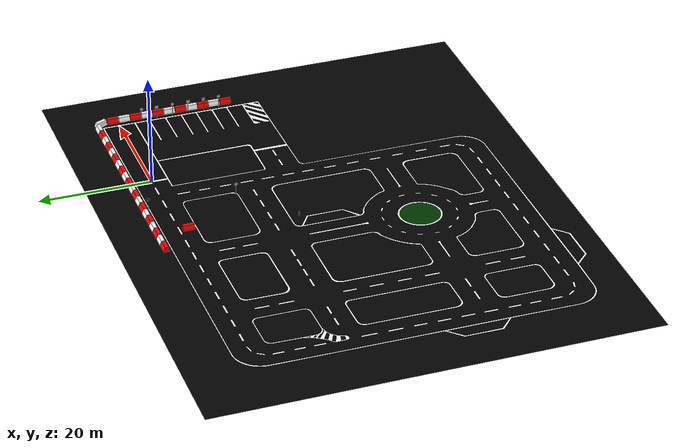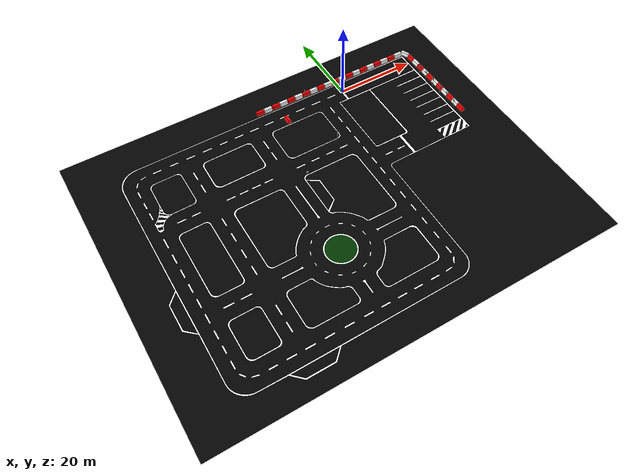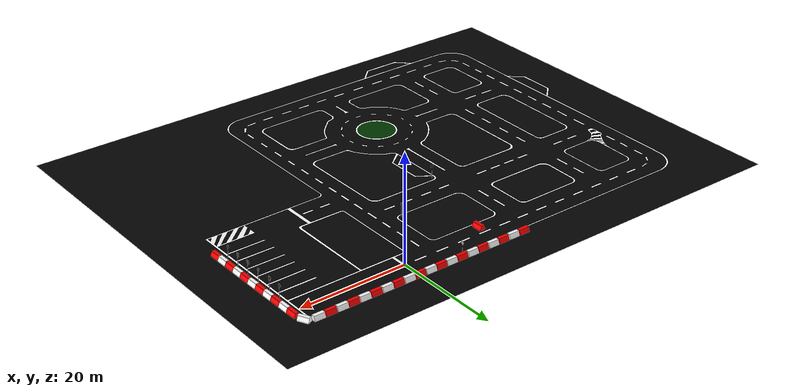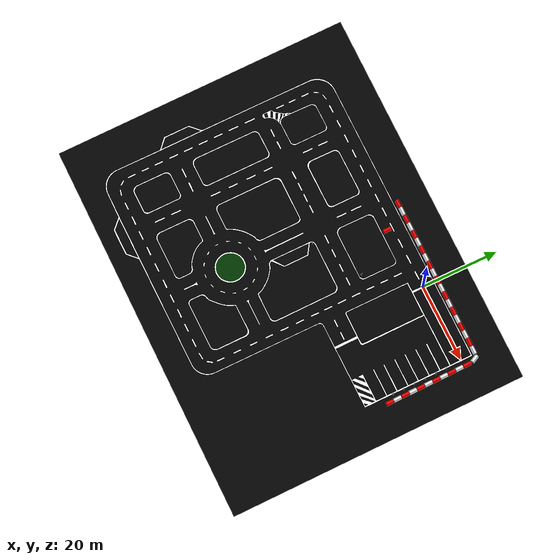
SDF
<sdf version="1.10">
 <world name="default">
  <model name="TeknofestHaritav2">
   <static>true</static>
   <link name="link">
    <collision name="collision">
     <geometry>
      <mesh><uri>package://simulation_2025/models/teknofest_zemin/meshes/teknofestharitav2.dae</uri></mesh>
     </geometry>
    </collision>
    <visual name="visual">
     <geometry>
      <mesh><uri>package://simulation_2025/models/teknofest_zemin/meshes/teknofestharitav2.dae</uri></mesh>
     </geometry>
    </visual>
    <inertial>
     <mass>1</mass>
     <inertia><ixx>1</ixx><ixy>0</ixy><ixz>0</ixz><iyy>1</iyy><iyz>0</iyz><izz>1</izz></inertia>
    </inertial>
   </link>
  </model>
  <include>
   <uri>package://simulation_2025/models/kirmizi_bariyer</uri>
   <name>KirmiziBariyer</name>
   <pose>0.10786999999999999 3.4992700000000001 0 0 0 -1.5717000000000001</pose>
  </include>
  <include>
   <uri>package://simulation_2025/models/beyaz_bariyer</uri>
   <name>BeyazBariyer</name>
   <pose>-2 3.5049600000000001 0 0 0 -1.5805400000000001</pose>
  </include>
  <include>
   <uri>package://simulation_2025/models/kirmizi_bariyer</uri>
   <name>KirmiziBariyer_1</name>
   <pose>-4.0795599999999999 3.5112199999999998 0 0 0 -1.5717000000000001</pose>
  </include>
  <include>
   <uri>package://simulation_2025/models/beyaz_bariyer</uri>
   <name>BeyazBariyer_1</name>
   <pose>-6.1809900000000004 3.5314399999999999 0 0 0 -1.5805400000000001</pose>
  </include>
  <include>
   <uri>package://simulation_2025/models/kirmizi_bariyer</uri>
   <name>KirmiziBariyer_1_1</name>
   <pose>-8.3466199999999997 3.5272800000000002 0 0 0 -1.5717000000000001</pose>
  </include>
  <include>
   <uri>package://simulation_2025/models/beyaz_bariyer</uri>
   <name>BeyazBariyer_1_1</name>
   <pose>-10.517799999999999 3.5630500000000001 0 0 0 -1.5805400000000001</pose>
  </include>
  <include>
   <uri>package://simulation_2025/models/kirmizi_bariyer</uri>
   <name>KirmiziBariyer_1_1_1</name>
   <pose>-12.643800000000001 3.5325600000000001 0 0 0 -1.5717000000000001</pose>
  </include>
  <include>
   <uri>package://simulation_2025/models/beyaz_bariyer</uri>
   <name>BeyazBariyer_1_1_1</name>
   <pose>-14.7996 3.5680100000000001 0 0 0 -1.5805400000000001</pose>
  </include>
  <include>
   <uri>package://simulation_2025/models/kirmizi_bariyer</uri>
   <name>KirmiziBariyer_1_1_1_1</name>
   <pose>-16.9375 3.56867 0 0 0 -1.5717000000000001</pose>
  </include>
  <include>
   <uri>package://simulation_2025/models/beyaz_bariyer</uri>
   <name>BeyazBariyer_1_1_1_1</name>
   <pose>-19.1816 3.5583399999999998 0 0 0 -1.5805400000000001</pose>
  </include>
  <include>
   <uri>package://simulation_2025/models/kirmizi_bariyer</uri>
   <name>KirmiziBariyer_1_1_1_1_1</name>
   <pose>-21.318999999999999 3.5587900000000001 0 0 0 -1.5717000000000001</pose>
  </include>
  <include>
   <uri>package://simulation_2025/models/kirmizi_bariyer</uri>
   <name>KirmiziBariyer_1_1_1_1_1_1_1_1_1_1_1_2_1_2_1_1_1_1_1_1_1_1_1_1_1_1_1_1_1_1_1_1_1_1_1_1</name>
   <pose>22.447199999999999 -20.040700000000001 0 0 0 0.0091700000000000028</pose>
  </include>
  <include>
   <uri>package://simulation_2025/models/beyaz_bariyer</uri>
   <name>BeyazBariyer_1_1_1_1_1_1_1_1_1_2_2_1_1_1_1_1_1_1_1_1_1_1_1_1_1_1_2_1_1_1_1_1_1</name>
   <pose>21.600300000000001 -17.9619 0 0 0 -3.1317699999999999</pose>
  </include>
  <include>
   <uri>package://simulation_2025/models/kirmizi_bariyer</uri>
   <name>KirmiziBariyer_1_1_1_1_1_1_1_1_1_1_1_2_1_2_1_1_1_1_1_1_1_1_1_1_1_1_1_1_1_1_1_1_1_1_1_1_1</name>
   <pose>22.410900000000002 -15.851599999999999 0 0 0 0.0091700000000000028</pose>
  </include>
  <include>
   <uri>package://simulation_2025/models/beyaz_bariyer</uri>
   <name>BeyazBariyer_1_1_1_1_1_1_1_1_1_2_2_1_1_1_1_1_1_1_1_1_1_1_1_1_1_1_2_1_1_1_1_1_1_1</name>
   <pose>21.564 -13.787100000000001 0 0 0 -3.1317699999999999</pose>
  </include>
  <include>
   <uri>package://simulation_2025/models/kirmizi_bariyer</uri>
   <name>KirmiziBariyer_1_1_1_1_1_1_1_1_1_1_1_2_1_2_1_1_1_1_1_1_1_1_1_1_1_1_1_1_1_1_1_1_1_1_1_1_1_1</name>
   <pose>22.403400000000001 -11.6785 0 0 0 0.0091700000000000028</pose>
  </include>
  <include>
   <uri>package://simulation_2025/models/beyaz_bariyer</uri>
   <name>BeyazBariyer_1_1_1_1_1_1_1_1_1_2_2_1_1_1_1_1_1_1_1_1_1_1_1_1_1_1_2_1_1_1_1_1_1_1_1</name>
   <pose>21.542300000000001 -9.5936500000000002 0 0 0 -3.1317699999999999</pose>
  </include>
  <include>
   <uri>package://simulation_2025/models/kirmizi_bariyer</uri>
   <name>KirmiziBariyer_1_1_1_1_1_1_1_1_1_1_1_2_1_2_1_1_1_1_1_1_1_1_1_1_1_1_1_1_1_1_1_1_1_1_1_1_1_1_1</name>
   <pose>22.3809 -7.5225900000000001 0 0 0 0.0091700000000000028</pose>
  </include>
  <include>
   <uri>package://simulation_2025/models/beyaz_bariyer</uri>
   <name>BeyazBariyer_1_1_1_1_1_1_1_1_1_2_2_1_1_1_1_1_1_1_1_1_1_1_1_1_1_1_2_1_1_1_1_1_1_1_1_1</name>
   <pose>21.5228 -5.4576700000000002 0 0 0 -3.1317699999999999</pose>
  </include>
  <include>
   <uri>package://simulation_2025/models/kirmizi_bariyer</uri>
   <name>KirmiziBariyer_1_1_1_1_1_1_1_1_1_1_1_2_1_2_1_1_1_1_1_1_1_1_1_1_1_1_1_1_1_1_1_1_1_1_1_1_1_1_1_1</name>
   <pose>22.3249 -3.3372000000000002 0 0 0 0.0091700000000000028</pose>
  </include>
  <include>
   <uri>package://simulation_2025/models/beyaz_bariyer</uri>
   <name>BeyazBariyer_1_1_1_1_1_1_1_1_1_2_2_1_1_1_1_1_1_1_1_1_1_1_1_1_1_1_2_1_1_1_1_1_1_1_1_1_1</name>
   <pose>21.468900000000001 -1.2568699999999999 0 0 0 -3.1317699999999999</pose>
  </include>
  <include>
   <uri>package://simulation_2025/models/kirmizi_bariyer</uri>
   <name>KirmiziBariyer_1_1_1_1_1_1_1_1_1_1_1_2_1_2_1_1_1_1_1_1_1_1_1_1_1_1_1_1_1_1_1_1_1_1_1_1_1_1_1_1_1</name>
   <pose>22.273399999999999 0.82996000000000003 0 0 0 0.0091700000000000028</pose>
  </include>
  <include>
   <uri>package://simulation_2025/models/beyaz_bariyer</uri>
   <name>BeyazBariyer_1_1_1_1_1_1_1_1_1_2_2_1_1_1_1_1_1_1_1_1_1_1_1_1_1_1_2_1_1_1_1_1_1_1_1_1_1_1</name>
   <pose>21.0425 2.9360200000000001 0 0 0 -2.6704300000000001</pose>
  </include>
  <include>
   <uri>package://simulation_2025/models/beyaz_bariyer</uri>
   <name>BeyazBariyer_2</name>
   <pose>2.2466599999999999 3.4881600000000001 0 0 0 -1.5805400000000001</pose>
  </include>
  <include>
   <uri>package://simulation_2025/models/kirmizi_bariyer</uri>
   <name>KirmiziBariyer_2</name>
   <pose>4.3765799999999997 3.4682499999999998 0 0 0 -1.5717000000000001</pose>
  </include>
  <include>
   <uri>package://simulation_2025/models/beyaz_bariyer</uri>
   <name>BeyazBariyer_2_1</name>
   <pose>6.5125299999999999 3.4748700000000001 0 0 0 -1.5805400000000001</pose>
  </include>
  <include>
   <uri>package://simulation_2025/models/kirmizi_bariyer</uri>
   <name>KirmiziBariyer_2_1</name>
   <pose>8.6795600000000004 3.4567299999999999 0 0 0 -1.5717000000000001</pose>
  </include>
  <include>
   <uri>package://simulation_2025/models/beyaz_bariyer</uri>
   <name>BeyazBariyer_2_1_1</name>
   <pose>10.825799999999999 3.4565899999999998 0 0 0 -1.5805400000000001</pose>
  </include>
  <include>
   <uri>package://simulation_2025/models/kirmizi_bariyer</uri>
   <name>KirmiziBariyer_2_1_1</name>
   <pose>12.9758 3.4375800000000001 0 0 0 -1.5717000000000001</pose>
  </include>
  <include>
   <uri>package://simulation_2025/models/beyaz_bariyer</uri>
   <name>BeyazBariyer_2_1_1_1</name>
   <pose>15.0641 3.4507099999999999 0 0 0 -1.5805400000000001</pose>
  </include>
  <include>
   <uri>package://simulation_2025/models/kirmizi_bariyer</uri>
   <name>KirmiziBariyer_2_1_1_1</name>
   <pose>17.198899999999998 3.4337300000000002 0 0 0 -1.5717000000000001</pose>
  </include>
  <include>
   <uri>package://simulation_2025/models/beyaz_bariyer</uri>
   <name>BeyazBariyer_2_1_1_1_1</name>
   <pose>19.366199999999999 3.4293200000000001 0 0 0 -1.5805400000000001</pose>
  </include>
  <model name="ileri_veya_saga_mecburi_levha_0">
   <link name="link">
    <visual name="visual">
     <geometry>
      <mesh>
       <uri>package://simulation_2025/models/ileri_veya_saga_mecburi_levha/meshes/ileri_veya_saga_mecburi_levha.dae</uri>
      </mesh>
     </geometry>
    </visual>
    <collision name="collision">
     <geometry>
      <mesh>
       <uri>package://simulation_2025/models/ileri_veya_saga_mecburi_levha/meshes/ileri_veya_saga_mecburi_levha.dae</uri>
      </mesh>
     </geometry>
    </collision>
    <inertial>
     <mass>1</mass>
     <inertia><ixx>1</ixx><ixy>0</ixy><ixz>0</ixz><iyy>1</iyy><iyz>0</iyz><izz>1</izz></inertia>
    </inertial>
   </link>
   <pose>-21.386100769042965 -19.508499145507812 0 0 0 -1.6711397505057446</pose>
   <static>true</static>
  </model>
  <model name="sola_donulmez_levha_3">
   <link name="link">
    <visual name="visual">
     <geometry>
      <mesh><uri>package://simulation_2025/models/sola_donulmez_levha/meshes/sola_donulmez_levha.dae</uri></mesh>
     </geometry>
    </visual>
    <collision name="collision">
     <geometry>
      <mesh><uri>package://simulation_2025/models/sola_donulmez_levha/meshes/sola_donulmez_levha.dae</uri></mesh>
     </geometry>
    </collision>
    <inertial>
     <mass>1</mass>
     <inertia><ixx>1</ixx><ixy>0</ixy><ixz>0</ixz><iyy>1</iyy><iyz>0</iyz><izz>1</izz></inertia>
    </inertial>
   </link>
   <pose>-9.0715599060058612 -12.298100471496584 0 0 0 3.1108664293704189</pose>
   <static>true</static>
  </model>
  <model name="ileri_mecburi_levha_0">
   <link name="link">
    <visual name="visual">
     <geometry>
      <mesh><uri>package://simulation_2025/models/ileri_mecburi_levha/meshes/ileri_mecburi_levha.dae</uri></mesh>
     </geometry>
    </visual>
    <collision name="collision">
     <geometry>
      <mesh><uri>package://simulation_2025/models/ileri_mecburi_levha/meshes/ileri_mecburi_levha.dae</uri></mesh>
     </geometry>
    </collision>
    <inertial>
     <mass>1</mass>
     <inertia><ixx>1</ixx><ixy>0</ixy><ixz>0</ixz><iyy>1</iyy><iyz>0</iyz><izz>1</izz></inertia>
    </inertial>
   </link>
   <pose>-9.038760140930453 3.2746238677036801 0 0 0 0</pose>
   <static>true</static>
  </model>
  <model name="red">
   <link name="link">
    <visual name="visual">
     <geometry><mesh><uri>package://simulation_2025/models/kirmizi_bariyer/meshes/red.dae</uri></mesh></geometry>
    </visual>
    <collision name="collision">
     <geometry><mesh><uri>package://simulation_2025/models/kirmizi_bariyer/meshes/red.dae</uri></mesh></geometry>
    </collision>
    <inertial>
     <mass>1</mass>
     <inertia><ixx>1</ixx><ixy>0</ixy><ixz>0</ixz><iyy>1</iyy><iyz>0</iyz><izz>1</izz></inertia>
    </inertial>
   </link>
   <pose>-16.170900344848633 -1.5230525732040405 0 0 0 0</pose>
   <static>true</static>
  </model>
  <model name="park_levha">
   <link name="link">
    <visual name="visual">
     <geometry><mesh><uri>package://simulation_2025/models/park_levha/meshes/park_levha.dae</uri></mesh></geometry>
    </visual>
    <collision name="collision">
     <geometry><mesh><uri>package://simulation_2025/models/park_levha/meshes/park_levha.dae</uri></mesh></geometry>
    </collision>
    <inertial>
     <mass>1</mass>
     <inertia><ixx>1</ixx><ixy>0</ixy><ixz>0</ixz><iyy>1</iyy><iyz>0</iyz><izz>1</izz></inertia>
    </inertial>
   </link>
   <pose>20.823799133300781 -15.716300010681154 0 0 0 3.1254041389935794</pose>
   <static>true</static>
  </model>
  <model name="park_yasak2_levha">
   <link name="link">
    <visual name="visual">
     <geometry>
      <mesh><uri>package://simulation_2025/models/park_yasak2_levha/meshes/park_yasak2_levha.dae</uri></mesh>
     </geometry>
    </visual>
    <collision name="collision">
     <geometry>
      <mesh><uri>package://simulation_2025/models/park_yasak2_levha/meshes/park_yasak2_levha.dae</uri></mesh>
     </geometry>
    </collision>
    <inertial>
     <mass>1</mass>
     <inertia><ixx>1</ixx><ixy>0</ixy><ixz>0</ixz><iyy>1</iyy><iyz>0</iyz><izz>1</izz></inertia>
    </inertial>
   </link>
   <pose>20.831100463867188 -18.559000015258789 0 0 0 3.1400835768335371</pose>
   <static>true</static>
  </model>
  <model name="park_levha_0">
   <link name="link">
    <visual name="visual">
     <geometry><mesh><uri>package://simulation_2025/models/park_levha/meshes/park_levha.dae</uri></mesh></geometry>
    </visual>
    <collision name="collision">
     <geometry><mesh><uri>package://simulation_2025/models/park_levha/meshes/park_levha.dae</uri></mesh></geometry>
    </collision>
    <inertial>
     <mass>1</mass>
     <inertia><ixx>1</ixx><ixy>0</ixy><ixz>0</ixz><iyy>1</iyy><iyz>0</iyz><izz>1</izz></inertia>
    </inertial>
   </link>
   <pose>20.838699340820312 -12.852999687194824 0 0 0 -3.1196839398767122</pose>
   <static>true</static>
  </model>
  <model name="park_yasak2_levha_1">
   <link name="link">
    <visual name="visual">
     <geometry>
      <mesh><uri>package://simulation_2025/models/park_yasak2_levha/meshes/park_yasak2_levha.dae</uri></mesh>
     </geometry>
    </visual>
    <collision name="collision">
     <geometry>
      <mesh><uri>package://simulation_2025/models/park_yasak2_levha/meshes/park_yasak2_levha.dae</uri></mesh>
     </geometry>
    </collision>
    <inertial>
     <mass>1</mass>
     <inertia><ixx>1</ixx><ixy>0</ixy><ixz>0</ixz><iyy>1</iyy><iyz>0</iyz><izz>1</izz></inertia>
    </inertial>
   </link>
   <pose>20.828399658203125 -9.9496002197265625 0 0 0 3.1409669828600042</pose>
   <static>true</static>
  </model>
  <model name="park_levha_1">
   <link name="link">
    <visual name="visual">
     <geometry><mesh><uri>package://simulation_2025/models/park_levha/meshes/park_levha.dae</uri></mesh></geometry>
    </visual>
    <collision name="collision">
     <geometry><mesh><uri>package://simulation_2025/models/park_levha/meshes/park_levha.dae</uri></mesh></geometry>
    </collision>
    <inertial>
     <mass>1</mass>
     <inertia><ixx>1</ixx><ixy>0</ixy><ixz>0</ixz><iyy>1</iyy><iyz>0</iyz><izz>1</izz></inertia>
    </inertial>
   </link>
   <pose>20.759700775146484 -6.9992899894714391 0 0 0 -3.1272888847304863</pose>
   <static>true</static>
  </model>
  <model name="park_yasak2_levha_2">
   <link name="link">
    <visual name="visual">
     <geometry>
      <mesh><uri>package://simulation_2025/models/park_yasak2_levha/meshes/park_yasak2_levha.dae</uri></mesh>
     </geometry>
    </visual>
    <collision name="collision">
     <geometry>
      <mesh><uri>package://simulation_2025/models/park_yasak2_levha/meshes/park_yasak2_levha.dae</uri></mesh>
     </geometry>
    </collision>
    <inertial>
     <mass>1</mass>
     <inertia><ixx>1</ixx><ixy>0</ixy><ixz>0</ixz><iyy>1</iyy><iyz>0</iyz><izz>1</izz></inertia>
    </inertial>
   </link>
   <pose>20.811399459838867 -4.2369298934936523 0 0 0 -3.1204939919269425</pose>
   <static>true</static>
  </model>
 </world>
</sdf>
